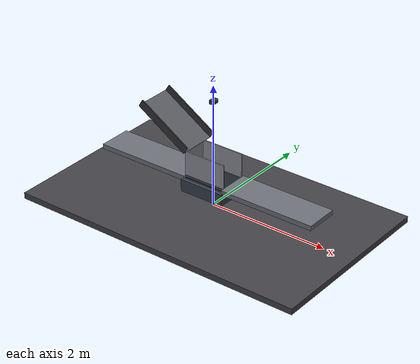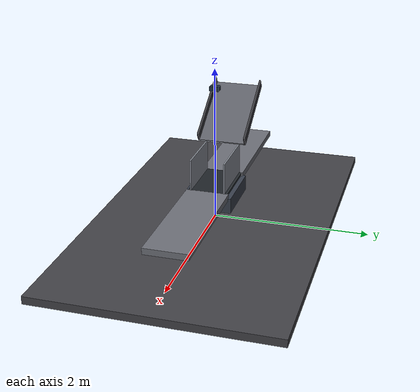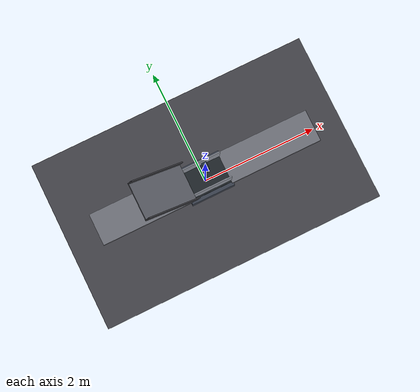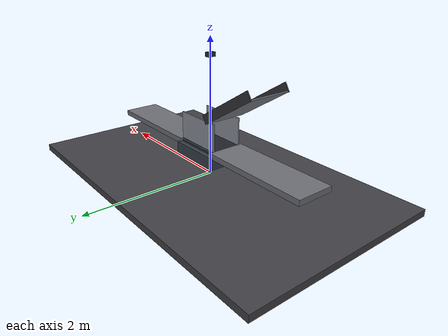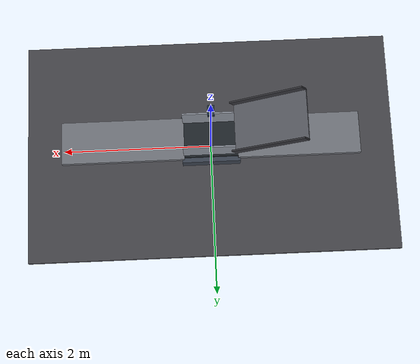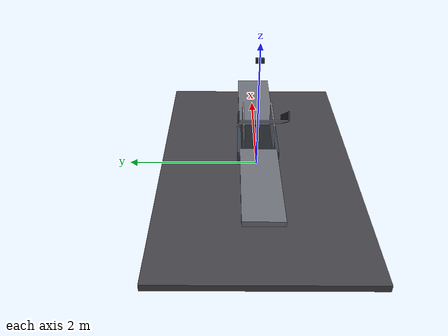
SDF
<?xml version="1.0"?>
<sdf version="1.10">
  <world name="kty_flow">
    <gravity>0 0 -9.81</gravity>
    <physics name="kty_flow_physics" type="ignored">
      <max_step_size>0.001</max_step_size>
      <real_time_factor>1.0</real_time_factor>
      <real_time_update_rate>1000</real_time_update_rate>
    </physics>

    <plugin filename="gz-sim-physics-system" name="gz::sim::systems::Physics"/>
    <plugin filename="gz-sim-user-commands-system" name="gz::sim::systems::UserCommands"/>
    <plugin filename="gz-sim-scene-broadcaster-system" name="gz::sim::systems::SceneBroadcaster"/>
    <plugin filename="gz-sim-sensors-system" name="gz::sim::systems::Sensors">
      <render_engine>ogre2</render_engine>
    </plugin>

    <scene>
      <ambient>0.48 0.48 0.48</ambient>
      <background>0.16 0.18 0.22</background>
      <grid>true</grid>
    </scene>

    <light type="directional" name="sun">
      <pose>-3 -4 8 0 0 0</pose>
      <cast_shadows>true</cast_shadows>
      <diffuse>0.95 0.95 0.95 1</diffuse>
      <specular>0.25 0.25 0.25 1</specular>
      <direction>0.3 0.4 -1.0</direction>
    </light>

    <model name="floor">
      <static>true</static>
      <pose>0 0 -0.05 0 0 0</pose>
      <link name="floor_link">
        <collision name="floor_collision">
          <geometry><box><size>5.0 3.0 0.10</size></box></geometry>
        </collision>
        <visual name="floor_visual">
          <geometry><box><size>5.0 3.0 0.10</size></box></geometry>
          <material><ambient>0.18 0.18 0.18 1</ambient><diffuse>0.26 0.26 0.28 1</diffuse></material>
        </visual>
      </link>
    </model>

    <model name="kty_flow_infeed">
      <static>true</static>
      <pose>-1.15 0 0.46 0 0 0</pose>
      <link name="bed">
        <collision name="bed_collision">
          <geometry><box><size>1.60 0.55 0.08</size></box></geometry>
          <surface><friction><ode><mu>0.75</mu><mu2>0.75</mu2></ode></friction></surface>
        </collision>
        <visual name="bed_visual">
          <geometry><box><size>1.60 0.55 0.08</size></box></geometry>
          <material><ambient>0.30 0.31 0.33 1</ambient><diffuse>0.43 0.44 0.47 1</diffuse></material>
        </visual>
      </link>
    </model>

    <model name="kty_flow_platform">
      <static>true</static>
      <link name="base">
        <pose>0 0 0.35 0 0 0</pose>
        <collision name="base_collision"><geometry><box><size>0.76 0.62 0.20</size></box></geometry></collision>
        <visual name="base_visual"><geometry><box><size>0.76 0.62 0.20</size></box></geometry><material><ambient>0.14 0.16 0.19 1</ambient><diffuse>0.22 0.25 0.30 1</diffuse></material></visual>
      </link>
      <link name="table">
        <pose>0 0 0.475 0 0 0</pose>
        <collision name="table_collision">
          <geometry><box><size>0.70 0.50 0.05</size></box></geometry>
          <surface><friction><ode><mu>0.75</mu><mu2>0.75</mu2></ode></friction></surface>
        </collision>
        <visual name="table_visual"><geometry><box><size>0.70 0.50 0.05</size></box></geometry><material><ambient>0.07 0.08 0.09 1</ambient><diffuse>0.12 0.14 0.16 1</diffuse></material></visual>
      </link>
    </model>

    <model name="kty_flow_outfeed">
      <static>true</static>
      <pose>1.15 0 0.46 0 0 0</pose>
      <link name="bed">
        <collision name="bed_collision">
          <geometry><box><size>1.60 0.55 0.08</size></box></geometry>
          <surface><friction><ode><mu>0.75</mu><mu2>0.75</mu2></ode></friction></surface>
        </collision>
        <visual name="bed_visual"><geometry><box><size>1.60 0.55 0.08</size></box></geometry><material><ambient>0.30 0.31 0.33 1</ambient><diffuse>0.43 0.44 0.47 1</diffuse></material></visual>
      </link>
    </model>

    <model name="kty_flow_side_guides">
      <static>true</static>
      <link name="guides">
        <collision name="guide_neg_y_collision"><pose>0 -0.218 0.70 0 0 0</pose><geometry><box><size>0.72 0.018 0.40</size></box></geometry></collision>
        <visual name="guide_neg_y_visual"><pose>0 -0.218 0.70 0 0 0</pose><geometry><box><size>0.72 0.018 0.40</size></box></geometry><material><ambient>0.40 0.42 0.45 1</ambient><diffuse>0.55 0.57 0.61 1</diffuse></material></visual>
        <collision name="guide_pos_y_collision"><pose>0 0.218 0.70 0 0 0</pose><geometry><box><size>0.72 0.018 0.40</size></box></geometry></collision>
        <visual name="guide_pos_y_visual"><pose>0 0.218 0.70 0 0 0</pose><geometry><box><size>0.72 0.018 0.40</size></box></geometry><material><ambient>0.40 0.42 0.45 1</ambient><diffuse>0.55 0.57 0.61 1</diffuse></material></visual>
      </link>
    </model>

    <!-- Low-friction chute for the deterministic product-fall test. -->
    <model name="kty_flow_product_chute">
      <static>true</static>
      <pose>-0.730 0 1.185 0 0.5585053606 0</pose>
      <link name="chute">
        <collision name="bed_collision">
          <geometry><box><size>1.000 0.600 0.020</size></box></geometry>
          <surface>
            <friction><ode><mu>0.20</mu><mu2>0.20</mu2><fdir1>1 0 0</fdir1></ode></friction>
            <bounce><restitution_coefficient>0.01</restitution_coefficient><threshold>0.2</threshold></bounce>
          </surface>
        </collision>
        <visual name="bed_visual"><geometry><box><size>1.000 0.600 0.020</size></box></geometry><material><ambient>0.22 0.23 0.25 1</ambient><diffuse>0.36 0.37 0.40 1</diffuse></material></visual>
        <collision name="rail_neg_y_collision"><pose>0 -0.310 0.055 0 0 0</pose><geometry><box><size>1.000 0.020 0.130</size></box></geometry></collision>
        <visual name="rail_neg_y_visual"><pose>0 -0.310 0.055 0 0 0</pose><geometry><box><size>1.000 0.020 0.130</size></box></geometry><material><ambient>0.12 0.12 0.13 1</ambient><diffuse>0.20 0.20 0.22 1</diffuse></material></visual>
        <collision name="rail_pos_y_collision"><pose>0 0.310 0.055 0 0 0</pose><geometry><box><size>1.000 0.020 0.130</size></box></geometry></collision>
        <visual name="rail_pos_y_visual"><pose>0 0.310 0.055 0 0 0</pose><geometry><box><size>1.000 0.020 0.130</size></box></geometry><material><ambient>0.12 0.12 0.13 1</ambient><diffuse>0.20 0.20 0.22 1</diffuse></material></visual>
      </link>
    </model>

    <!-- Fixed overhead RGB-D camera. Optical +X points down toward the KTY. -->
    <model name="kty_flow_vision_station">
      <static>true</static>
      <link name="camera_link">
        <pose>0 0 1.75 0 1.57079632679 1.57079632679</pose>
        <visual name="camera_body">
          <pose>0 0 0 0 -1.57079632679 0</pose>
          <geometry><box><size>0.12 0.08 0.06</size></box></geometry>
          <material><ambient>0.08 0.10 0.13 1</ambient><diffuse>0.12 0.18 0.24 1</diffuse></material>
        </visual>
        <sensor name="overhead_rgbd" type="rgbd_camera">
          <always_on>true</always_on>
          <update_rate>15</update_rate>
          <topic>/kty/vision</topic>
          <camera>
            <horizontal_fov>1.05</horizontal_fov>
            <image><width>800</width><height>600</height><format>R8G8B8</format></image>
            <clip><near>0.20</near><far>3.0</far></clip>
            <noise><type>gaussian</type><mean>0.0</mean><stddev>0.001</stddev></noise>
          </camera>
          <visualize>true</visualize>
        </sensor>
      </link>
    </model>

    <gui fullscreen="0">
      <plugin filename="MinimalScene" name="3D View">
        <gz-gui>
          <title>3D View</title>
          <property type="bool" key="showTitleBar">false</property>
          <property type="string" key="state">docked</property>
        </gz-gui>
        <engine>ogre</engine>
        <scene>scene</scene>
        <ambient_light>0.48 0.48 0.48</ambient_light>
        <background_color>0.16 0.18 0.22</background_color>
        <camera_pose>-3.8 -3.2 2.9 0 0.42 0.72</camera_pose>
      </plugin>
      <plugin filename="EntityContextMenuPlugin" name="Entity context menu">
        <gz-gui><property key="state" type="string">floating</property><property key="showTitleBar" type="bool">false</property></gz-gui>
      </plugin>
      <plugin filename="GzSceneManager" name="Scene Manager">
        <gz-gui><property key="state" type="string">floating</property><property key="showTitleBar" type="bool">false</property></gz-gui>
      </plugin>
      <plugin filename="InteractiveViewControl" name="Interactive view control">
        <gz-gui><property key="state" type="string">floating</property><property key="showTitleBar" type="bool">false</property></gz-gui>
      </plugin>
      <plugin filename="CameraTracking" name="Camera Tracking">
        <gz-gui><property key="state" type="string">floating</property><property key="showTitleBar" type="bool">false</property></gz-gui>
      </plugin>
      <plugin name="World control" filename="WorldControl">
        <gz-gui><title>World control</title><property type="bool" key="showTitleBar">0</property><property type="string" key="state">floating</property></gz-gui>
        <play_pause>1</play_pause>
        <step>1</step>
        <start_paused>0</start_paused>
      </plugin>
      <plugin filename="WorldStats" name="World stats"/>
      <plugin filename="EntityTree" name="Entity tree"/>
    </gui>
  </world>
</sdf>
